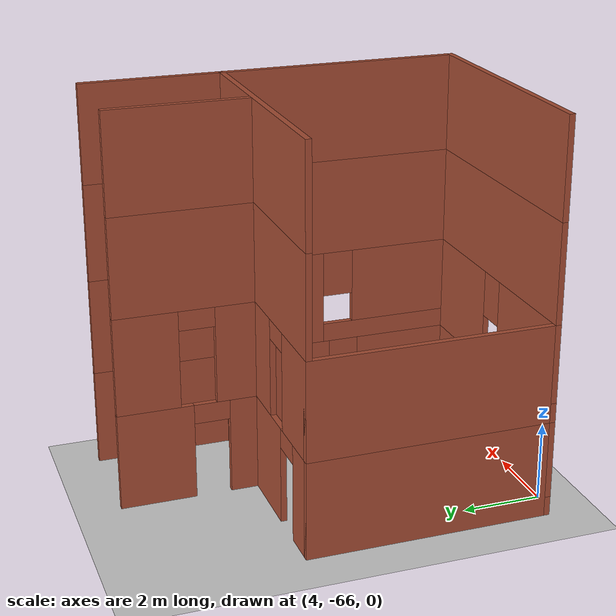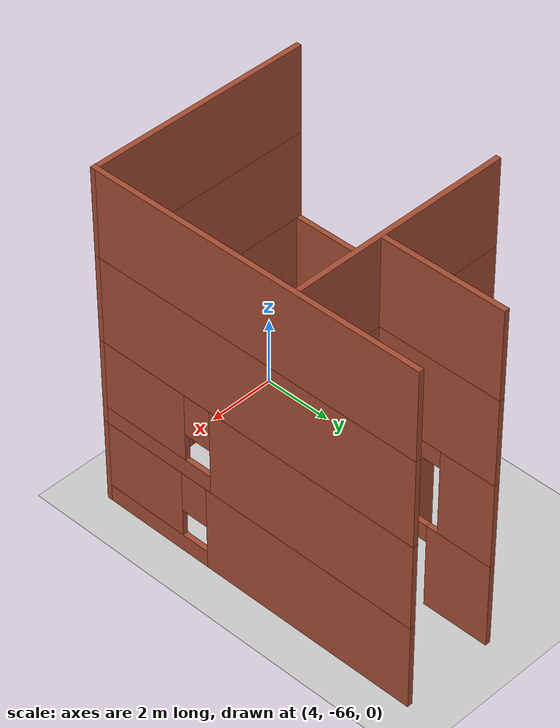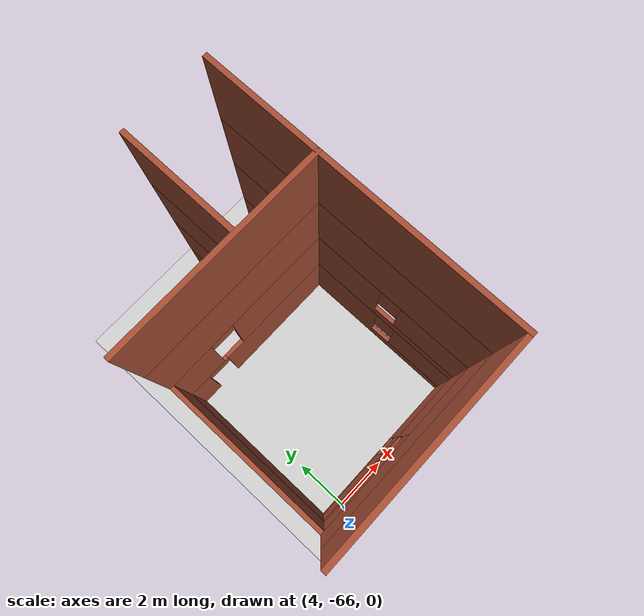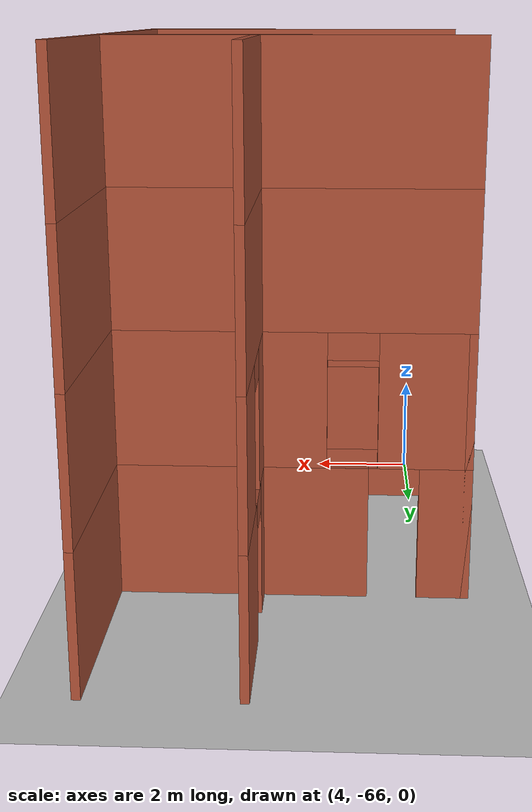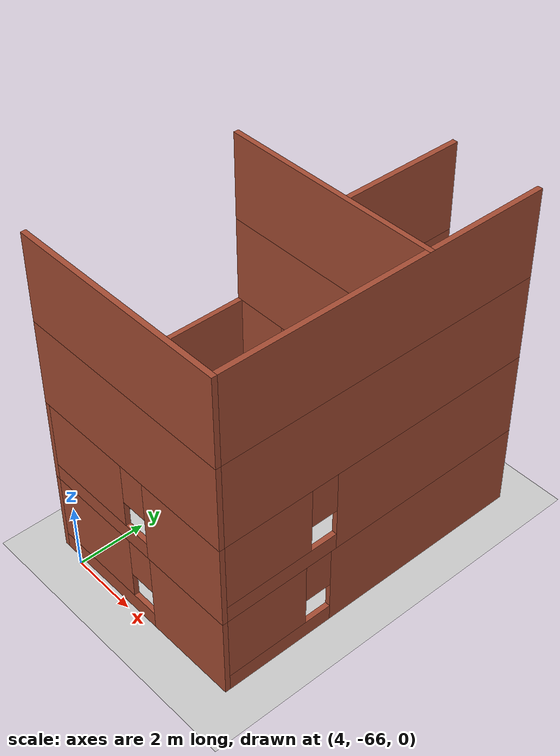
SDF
<sdf version="1.7">
 <world name="default">
  <model name="ground_plane">
   <static>1</static>
   <link name="link">
    <collision name="collision">
     <geometry><plane><normal>0 0 1</normal><size>300 300</size></plane></geometry>
     <surface>
      <contact><collide_bitmask>65535</collide_bitmask></contact>
      <friction><ode><mu>100</mu><mu2>50</mu2></ode></friction>
     </surface>
    </collision>
    <visual name="visual">
     <cast_shadows>0</cast_shadows>
     <geometry><plane><normal>0 0 1</normal><size>300 300</size></plane></geometry>
     <material>
      <script><uri>file://media/materials/scripts/gazebo.material</uri><name>Gazebo/Grey</name></script>
     </material>
    </visual>
   </link>
  </model>
  <model name="Drone_House_2">
   <pose>1.8622 -57.4379 0 0 -0 0</pose>
   <link name="Wall_101">
    <collision name="Wall_101_Collision">
     <geometry><box><size>6.5 0.15 2.5</size></box></geometry>
     <pose>0 0 1.25 0 -0 0</pose>
    </collision>
    <visual name="Wall_101_Visual">
     <pose>0 0 1.25 0 -0 0</pose>
     <geometry><box><size>6.5 0.15 2.5</size></box></geometry>
     <material>
      <script><uri>file://media/materials/scripts/gazebo.material</uri><name>Gazebo/Bricks</name></script>
      <ambient>1 1 1 1</ambient>
     </material>
     <meta><layer>2</layer></meta>
    </visual>
    <pose>4.55106 -2.25 5 0 -0 0</pose>
   </link>
   <link name="Wall_105">
    <collision name="Wall_105_Collision">
     <geometry><box><size>3.5 0.15 2.5</size></box></geometry>
     <pose>0 0 1.25 0 -0 0</pose>
    </collision>
    <visual name="Wall_105_Visual">
     <pose>0 0 1.25 0 -0 0</pose>
     <geometry><box><size>3.5 0.15 2.5</size></box></geometry>
     <material>
      <script><uri>file://media/materials/scripts/gazebo.material</uri><name>Gazebo/Bricks</name></script>
      <ambient>1 1 1 1</ambient>
     </material>
     <meta><layer>2</layer></meta>
    </visual>
    <pose>5.09404 -0.429379 5 0 -0 -1.5708</pose>
   </link>
   <link name="Wall_120">
    <collision name="Wall_120_Collision">
     <geometry><box><size>9.75 0.15 2.5</size></box></geometry>
     <pose>0 0 1.25 0 -0 0</pose>
    </collision>
    <visual name="Wall_120_Visual">
     <pose>0 0 1.25 0 -0 0</pose>
     <geometry><box><size>9.75 0.15 2.5</size></box></geometry>
     <material>
      <script><uri>file://media/materials/scripts/gazebo.material</uri><name>Gazebo/Bricks</name></script>
      <ambient>1 1 1 1</ambient>
     </material>
     <meta><layer>3</layer></meta>
    </visual>
    <pose>7.72606 -3.55 7.5 0 -0 -1.5708</pose>
   </link>
   <link name="Wall_121">
    <collision name="Wall_121_Collision">
     <geometry><box><size>6.5 0.15 2.5</size></box></geometry>
     <pose>0 0 1.25 0 -0 0</pose>
    </collision>
    <visual name="Wall_121_Visual">
     <pose>0 0 1.25 0 -0 0</pose>
     <geometry><box><size>6.5 0.15 2.5</size></box></geometry>
     <material>
      <script><uri>file://media/materials/scripts/gazebo.material</uri><name>Gazebo/Bricks</name></script>
      <ambient>1 1 1 1</ambient>
     </material>
     <meta><layer>3</layer></meta>
    </visual>
    <pose>4.55106 -8.35 7.5 0 -0 3.14159</pose>
   </link>
   <link name="Wall_123">
    <collision name="Wall_123_Collision">
     <geometry><box><size>6.5 0.15 2.5</size></box></geometry>
     <pose>0 0 1.25 0 -0 0</pose>
    </collision>
    <visual name="Wall_123_Visual">
     <pose>0 0 1.25 0 -0 0</pose>
     <geometry><box><size>6.5 0.15 2.5</size></box></geometry>
     <material>
      <script><uri>file://media/materials/scripts/gazebo.material</uri><name>Gazebo/Bricks</name></script>
      <ambient>1 1 1 1</ambient>
     </material>
     <meta><layer>3</layer></meta>
    </visual>
    <pose>4.55106 -2.25 7.5 0 -0 0</pose>
   </link>
   <link name="Wall_127">
    <collision name="Wall_127_Collision">
     <geometry><box><size>3.5 0.15 2.5</size></box></geometry>
     <pose>0 0 1.25 0 -0 0</pose>
    </collision>
    <visual name="Wall_127_Visual">
     <pose>0 0 1.25 0 -0 0</pose>
     <geometry><box><size>3.5 0.15 2.5</size></box></geometry>
     <material>
      <script><uri>file://media/materials/scripts/gazebo.material</uri><name>Gazebo/Bricks</name></script>
      <ambient>1 1 1 1</ambient>
     </material>
     <meta><layer>3</layer></meta>
    </visual>
    <pose>5.09404 -0.429379 7.5 0 -0 -1.5708</pose>
   </link>
   <link name="Wall_23">
    <pose>7.72606 -3.55 0 0 -0 -1.5708</pose>
    <visual name="Wall_23_Visual_0">
     <pose>-1.69699 0 1.25 0 -0 0</pose>
     <geometry><box><size>6.35603 0.15 2.5</size></box></geometry>
     <material>
      <script><uri>file://media/materials/scripts/gazebo.material</uri><name>Gazebo/Bricks</name></script>
      <ambient>1 1 1 1</ambient>
     </material>
     <meta><layer>0</layer></meta>
    </visual>
    <collision name="Wall_23_Collision_0">
     <geometry><box><size>6.35603 0.15 2.5</size></box></geometry>
     <pose>-1.69699 0 1.25 0 -0 0</pose>
    </collision>
    <visual name="Wall_23_Visual_1">
     <pose>3.17801 0 0.25 0 -0 0</pose>
     <geometry><box><size>3.39397 0.15 0.5</size></box></geometry>
     <material>
      <script><uri>file://media/materials/scripts/gazebo.material</uri><name>Gazebo/Bricks</name></script>
      <ambient>1 1 1 1</ambient>
     </material>
     <meta><layer>0</layer></meta>
    </visual>
    <collision name="Wall_23_Collision_1">
     <geometry><box><size>3.39397 0.15 0.5</size></box></geometry>
     <pose>3.17801 0 0.25 0 -0 0</pose>
    </collision>
    <visual name="Wall_23_Visual_2">
     <pose>3.57801 0 1.5 0 -0 0</pose>
     <geometry><box><size>2.59397 0.15 2</size></box></geometry>
     <material>
      <script><uri>file://media/materials/scripts/gazebo.material</uri><name>Gazebo/Bricks</name></script>
      <ambient>1 1 1 1</ambient>
     </material>
     <meta><layer>0</layer></meta>
    </visual>
    <collision name="Wall_23_Collision_2">
     <geometry><box><size>2.59397 0.15 2</size></box></geometry>
     <pose>3.57801 0 1.5 0 -0 0</pose>
    </collision>
    <visual name="Wall_23_Visual_3">
     <pose>1.88103 0 1.9 0 -0 0</pose>
     <geometry><box><size>0.8 0.15 1.2</size></box></geometry>
     <material>
      <script><uri>file://media/materials/scripts/gazebo.material</uri><name>Gazebo/Bricks</name></script>
      <ambient>1 1 1 1</ambient>
     </material>
     <meta><layer>0</layer></meta>
    </visual>
    <collision name="Wall_23_Collision_3">
     <geometry><box><size>0.8 0.15 1.2</size></box></geometry>
     <pose>1.88103 0 1.9 0 -0 0</pose>
    </collision>
   </link>
   <link name="Wall_24">
    <pose>4.55106 -8.35 0 0 -0 3.14159</pose>
    <visual name="Wall_24_Visual_0">
     <pose>-1.89698 0 1.25 0 -0 0</pose>
     <geometry><box><size>2.70603 0.15 2.5</size></box></geometry>
     <material>
      <script><uri>file://media/materials/scripts/gazebo.material</uri><name>Gazebo/Bricks</name></script>
      <ambient>1 1 1 1</ambient>
     </material>
     <meta><layer>0</layer></meta>
    </visual>
    <collision name="Wall_24_Collision_0">
     <geometry><box><size>2.70603 0.15 2.5</size></box></geometry>
     <pose>-1.89698 0 1.25 0 -0 0</pose>
    </collision>
    <visual name="Wall_24_Visual_1">
     <pose>1.35302 0 0.25 0 -0 0</pose>
     <geometry><box><size>3.79397 0.15 0.5</size></box></geometry>
     <material>
      <script><uri>file://media/materials/scripts/gazebo.material</uri><name>Gazebo/Bricks</name></script>
      <ambient>1 1 1 1</ambient>
     </material>
     <meta><layer>0</layer></meta>
    </visual>
    <collision name="Wall_24_Collision_1">
     <geometry><box><size>3.79397 0.15 0.5</size></box></geometry>
     <pose>1.35302 0 0.25 0 -0 0</pose>
    </collision>
    <visual name="Wall_24_Visual_2">
     <pose>1.75301 0 1.5 0 -0 0</pose>
     <geometry><box><size>2.99397 0.15 2</size></box></geometry>
     <material>
      <script><uri>file://media/materials/scripts/gazebo.material</uri><name>Gazebo/Bricks</name></script>
      <ambient>1 1 1 1</ambient>
     </material>
     <meta><layer>0</layer></meta>
    </visual>
    <collision name="Wall_24_Collision_2">
     <geometry><box><size>2.99397 0.15 2</size></box></geometry>
     <pose>1.75301 0 1.5 0 -0 0</pose>
    </collision>
    <visual name="Wall_24_Visual_3">
     <pose>-0.14397 0 1.9 0 -0 0</pose>
     <geometry><box><size>0.8 0.15 1.2</size></box></geometry>
     <material>
      <script><uri>file://media/materials/scripts/gazebo.material</uri><name>Gazebo/Bricks</name></script>
      <ambient>1 1 1 1</ambient>
     </material>
     <meta><layer>0</layer></meta>
    </visual>
    <collision name="Wall_24_Collision_3">
     <geometry><box><size>0.8 0.15 1.2</size></box></geometry>
     <pose>-0.14397 0 1.9 0 -0 0</pose>
    </collision>
   </link>
   <link name="Wall_25">
    <collision name="Wall_25_Collision">
     <geometry><box><size>6.25 0.15 2.5</size></box></geometry>
     <pose>0 0 1.25 0 -0 0</pose>
    </collision>
    <visual name="Wall_25_Visual">
     <pose>0 0 1.25 0 -0 0</pose>
     <geometry><box><size>6.25 0.15 2.5</size></box></geometry>
     <material>
      <script><uri>file://media/materials/scripts/gazebo.material</uri><name>Gazebo/Bricks</name></script>
      <ambient>1 1 1 1</ambient>
     </material>
     <meta><layer>0</layer></meta>
    </visual>
    <pose>1.37606 -5.3 0 0 -0 1.5708</pose>
   </link>
   <link name="Wall_26">
    <pose>4.55106 -2.25 0 0 -0 0</pose>
    <visual name="Wall_26_Visual_0">
     <pose>-2.77552 0 1.25 0 -0 0</pose>
     <geometry><box><size>0.948955 0.15 2.5</size></box></geometry>
     <material>
      <script><uri>file://media/materials/scripts/gazebo.material</uri><name>Gazebo/Bricks</name></script>
      <ambient>1 1 1 1</ambient>
     </material>
     <meta><layer>0</layer></meta>
    </visual>
    <collision name="Wall_26_Collision_0">
     <geometry><box><size>0.948955 0.15 2.5</size></box></geometry>
     <pose>-2.77552 0 1.25 0 -0 0</pose>
    </collision>
    <visual name="Wall_26_Visual_1">
     <pose>0.924477 0 1.25 0 -0 0</pose>
     <geometry><box><size>4.65104 0.15 2.5</size></box></geometry>
     <material>
      <script><uri>file://media/materials/scripts/gazebo.material</uri><name>Gazebo/Bricks</name></script>
      <ambient>1 1 1 1</ambient>
     </material>
     <meta><layer>0</layer></meta>
    </visual>
    <collision name="Wall_26_Collision_1">
     <geometry><box><size>4.65104 0.15 2.5</size></box></geometry>
     <pose>0.924477 0 1.25 0 -0 0</pose>
    </collision>
    <visual name="Wall_26_Visual_2">
     <pose>-1.85105 0 2.25 0 -0 0</pose>
     <geometry><box><size>0.9 0.15 0.5</size></box></geometry>
     <material>
      <script><uri>file://media/materials/scripts/gazebo.material</uri><name>Gazebo/Bricks</name></script>
      <ambient>1 1 1 1</ambient>
     </material>
     <meta><layer>0</layer></meta>
    </visual>
    <collision name="Wall_26_Collision_2">
     <geometry><box><size>0.9 0.15 0.5</size></box></geometry>
     <pose>-1.85105 0 2.25 0 -0 0</pose>
    </collision>
   </link>
   <link name="Wall_33">
    <pose>5.09404 -0.429379 0 0 -0 -1.5708</pose>
    <visual name="Wall_33_Visual_0">
     <pose>-0.793691 0 1.25 0 -0 0</pose>
     <geometry><box><size>1.91262 0.15 2.5</size></box></geometry>
     <material>
      <script><uri>file://media/materials/scripts/gazebo.material</uri><name>Gazebo/Bricks</name></script>
      <ambient>1 1 1 1</ambient>
     </material>
     <meta><layer>0</layer></meta>
    </visual>
    <collision name="Wall_33_Collision_0">
     <geometry><box><size>1.91262 0.15 2.5</size></box></geometry>
     <pose>-0.793691 0 1.25 0 -0 0</pose>
    </collision>
    <visual name="Wall_33_Visual_1">
     <pose>1.40631 0 1.25 0 -0 0</pose>
     <geometry><box><size>0.687383 0.15 2.5</size></box></geometry>
     <material>
      <script><uri>file://media/materials/scripts/gazebo.material</uri><name>Gazebo/Bricks</name></script>
      <ambient>1 1 1 1</ambient>
     </material>
     <meta><layer>0</layer></meta>
    </visual>
    <collision name="Wall_33_Collision_1">
     <geometry><box><size>0.687383 0.15 2.5</size></box></geometry>
     <pose>1.40631 0 1.25 0 -0 0</pose>
    </collision>
    <visual name="Wall_33_Visual_2">
     <pose>0.612617 0 2.25 0 -0 0</pose>
     <geometry><box><size>0.9 0.15 0.5</size></box></geometry>
     <material>
      <script><uri>file://media/materials/scripts/gazebo.material</uri><name>Gazebo/Bricks</name></script>
      <ambient>1 1 1 1</ambient>
     </material>
     <meta><layer>0</layer></meta>
    </visual>
    <collision name="Wall_33_Collision_2">
     <geometry><box><size>0.9 0.15 0.5</size></box></geometry>
     <pose>0.612617 0 2.25 0 -0 0</pose>
    </collision>
   </link>
   <link name="Wall_49">
    <pose>7.72606 -3.55 2.5 0 -0 -1.5708</pose>
    <visual name="Wall_49_Visual_0">
     <pose>-1.77679 0 1.25 0 -0 0</pose>
     <geometry><box><size>6.19643 0.15 2.5</size></box></geometry>
     <material>
      <script><uri>file://media/materials/scripts/gazebo.material</uri><name>Gazebo/Bricks</name></script>
      <ambient>1 1 1 1</ambient>
     </material>
     <meta><layer>1</layer></meta>
    </visual>
    <collision name="Wall_49_Collision_0">
     <geometry><box><size>6.19643 0.15 2.5</size></box></geometry>
     <pose>-1.77679 0 1.25 0 -0 0</pose>
    </collision>
    <visual name="Wall_49_Visual_1">
     <pose>3.09821 0 0.25 0 -0 0</pose>
     <geometry><box><size>3.55357 0.15 0.5</size></box></geometry>
     <material>
      <script><uri>file://media/materials/scripts/gazebo.material</uri><name>Gazebo/Bricks</name></script>
      <ambient>1 1 1 1</ambient>
     </material>
     <meta><layer>1</layer></meta>
    </visual>
    <collision name="Wall_49_Collision_1">
     <geometry><box><size>3.55357 0.15 0.5</size></box></geometry>
     <pose>3.09821 0 0.25 0 -0 0</pose>
    </collision>
    <visual name="Wall_49_Visual_2">
     <pose>3.49821 0 1.5 0 -0 0</pose>
     <geometry><box><size>2.75357 0.15 2</size></box></geometry>
     <material>
      <script><uri>file://media/materials/scripts/gazebo.material</uri><name>Gazebo/Bricks</name></script>
      <ambient>1 1 1 1</ambient>
     </material>
     <meta><layer>1</layer></meta>
    </visual>
    <collision name="Wall_49_Collision_2">
     <geometry><box><size>2.75357 0.15 2</size></box></geometry>
     <pose>3.49821 0 1.5 0 -0 0</pose>
    </collision>
    <visual name="Wall_49_Visual_3">
     <pose>1.72143 0 1.9 0 -0 0</pose>
     <geometry><box><size>0.8 0.15 1.2</size></box></geometry>
     <material>
      <script><uri>file://media/materials/scripts/gazebo.material</uri><name>Gazebo/Bricks</name></script>
      <ambient>1 1 1 1</ambient>
     </material>
     <meta><layer>1</layer></meta>
    </visual>
    <collision name="Wall_49_Collision_3">
     <geometry><box><size>0.8 0.15 1.2</size></box></geometry>
     <pose>1.72143 0 1.9 0 -0 0</pose>
    </collision>
   </link>
   <link name="Wall_50">
    <pose>4.55106 -8.35 2.5 0 -0 3.14159</pose>
    <visual name="Wall_50_Visual_0">
     <pose>-1.87038 0 1.25 0 -0 0</pose>
     <geometry><box><size>2.75923 0.15 2.5</size></box></geometry>
     <material>
      <script><uri>file://media/materials/scripts/gazebo.material</uri><name>Gazebo/Bricks</name></script>
      <ambient>1 1 1 1</ambient>
     </material>
     <meta><layer>1</layer></meta>
    </visual>
    <collision name="Wall_50_Collision_0">
     <geometry><box><size>2.75923 0.15 2.5</size></box></geometry>
     <pose>-1.87038 0 1.25 0 -0 0</pose>
    </collision>
    <visual name="Wall_50_Visual_1">
     <pose>1.37962 0 0.25 0 -0 0</pose>
     <geometry><box><size>3.74077 0.15 0.5</size></box></geometry>
     <material>
      <script><uri>file://media/materials/scripts/gazebo.material</uri><name>Gazebo/Bricks</name></script>
      <ambient>1 1 1 1</ambient>
     </material>
     <meta><layer>1</layer></meta>
    </visual>
    <collision name="Wall_50_Collision_1">
     <geometry><box><size>3.74077 0.15 0.5</size></box></geometry>
     <pose>1.37962 0 0.25 0 -0 0</pose>
    </collision>
    <visual name="Wall_50_Visual_2">
     <pose>1.77961 0 1.5 0 -0 0</pose>
     <geometry><box><size>2.94077 0.15 2</size></box></geometry>
     <material>
      <script><uri>file://media/materials/scripts/gazebo.material</uri><name>Gazebo/Bricks</name></script>
      <ambient>1 1 1 1</ambient>
     </material>
     <meta><layer>1</layer></meta>
    </visual>
    <collision name="Wall_50_Collision_2">
     <geometry><box><size>2.94077 0.15 2</size></box></geometry>
     <pose>1.77961 0 1.5 0 -0 0</pose>
    </collision>
    <visual name="Wall_50_Visual_3">
     <pose>-0.090769 0 1.9 0 -0 0</pose>
     <geometry><box><size>0.8 0.15 1.2</size></box></geometry>
     <material>
      <script><uri>file://media/materials/scripts/gazebo.material</uri><name>Gazebo/Bricks</name></script>
      <ambient>1 1 1 1</ambient>
     </material>
     <meta><layer>1</layer></meta>
    </visual>
    <collision name="Wall_50_Collision_3">
     <geometry><box><size>0.8 0.15 1.2</size></box></geometry>
     <pose>-0.090769 0 1.9 0 -0 0</pose>
    </collision>
   </link>
   <link name="Wall_51">
    <collision name="Wall_51_Collision">
     <geometry><box><size>6.25 0.15 2.5</size></box></geometry>
     <pose>0 0 1.25 0 -0 0</pose>
    </collision>
    <visual name="Wall_51_Visual">
     <pose>0 0 1.25 0 -0 0</pose>
     <geometry><box><size>6.25 0.15 2.5</size></box></geometry>
     <material>
      <script><uri>file://media/materials/scripts/gazebo.material</uri><name>Gazebo/Bricks</name></script>
      <ambient>1 1 1 1</ambient>
     </material>
     <meta><layer>1</layer></meta>
    </visual>
    <pose>1.37606 -5.3 2.5 0 -0 1.5708</pose>
   </link>
   <link name="Wall_52">
    <pose>4.55106 -2.25 2.5 0 -0 0</pose>
    <visual name="Wall_52_Visual_0">
     <pose>-2.40312 0 1.25 0 -0 0</pose>
     <geometry><box><size>1.69376 0.15 2.5</size></box></geometry>
     <material>
      <script><uri>file://media/materials/scripts/gazebo.material</uri><name>Gazebo/Bricks</name></script>
      <ambient>1 1 1 1</ambient>
     </material>
     <meta><layer>1</layer></meta>
    </visual>
    <collision name="Wall_52_Collision_0">
     <geometry><box><size>1.69376 0.15 2.5</size></box></geometry>
     <pose>-2.40312 0 1.25 0 -0 0</pose>
    </collision>
    <visual name="Wall_52_Visual_1">
     <pose>1.29688 0 1.25 0 -0 0</pose>
     <geometry><box><size>3.90624 0.15 2.5</size></box></geometry>
     <material>
      <script><uri>file://media/materials/scripts/gazebo.material</uri><name>Gazebo/Bricks</name></script>
      <ambient>1 1 1 1</ambient>
     </material>
     <meta><layer>1</layer></meta>
    </visual>
    <collision name="Wall_52_Collision_1">
     <geometry><box><size>3.90624 0.15 2.5</size></box></geometry>
     <pose>1.29688 0 1.25 0 -0 0</pose>
    </collision>
    <visual name="Wall_52_Visual_2">
     <pose>-1.10624 0 2.25 0 -0 0</pose>
     <geometry><box><size>0.9 0.15 0.5</size></box></geometry>
     <material>
      <script><uri>file://media/materials/scripts/gazebo.material</uri><name>Gazebo/Bricks</name></script>
      <ambient>1 1 1 1</ambient>
     </material>
     <meta><layer>1</layer></meta>
    </visual>
    <collision name="Wall_52_Collision_2">
     <geometry><box><size>0.9 0.15 0.5</size></box></geometry>
     <pose>-1.10624 0 2.25 0 -0 0</pose>
    </collision>
   </link>
   <link name="Wall_56">
    <pose>5.09404 -0.429379 2.5 0 -0 -1.5708</pose>
    <visual name="Wall_56_Visual_0">
     <pose>-0.953293 0 1.25 0 -0 0</pose>
     <geometry><box><size>1.59342 0.15 2.5</size></box></geometry>
     <material>
      <script><uri>file://media/materials/scripts/gazebo.material</uri><name>Gazebo/Bricks</name></script>
      <ambient>1 1 1 1</ambient>
     </material>
     <meta><layer>1</layer></meta>
    </visual>
    <collision name="Wall_56_Collision_0">
     <geometry><box><size>1.59342 0.15 2.5</size></box></geometry>
     <pose>-0.953293 0 1.25 0 -0 0</pose>
    </collision>
    <visual name="Wall_56_Visual_1">
     <pose>1.24671 0 1.25 0 -0 0</pose>
     <geometry><box><size>1.00659 0.15 2.5</size></box></geometry>
     <material>
      <script><uri>file://media/materials/scripts/gazebo.material</uri><name>Gazebo/Bricks</name></script>
      <ambient>1 1 1 1</ambient>
     </material>
     <meta><layer>1</layer></meta>
    </visual>
    <collision name="Wall_56_Collision_1">
     <geometry><box><size>1.00659 0.15 2.5</size></box></geometry>
     <pose>1.24671 0 1.25 0 -0 0</pose>
    </collision>
    <visual name="Wall_56_Visual_2">
     <pose>0.293415 0 2.25 0 -0 0</pose>
     <geometry><box><size>0.9 0.15 0.5</size></box></geometry>
     <material>
      <script><uri>file://media/materials/scripts/gazebo.material</uri><name>Gazebo/Bricks</name></script>
      <ambient>1 1 1 1</ambient>
     </material>
     <meta><layer>1</layer></meta>
    </visual>
    <collision name="Wall_56_Collision_2">
     <geometry><box><size>0.9 0.15 0.5</size></box></geometry>
     <pose>0.293415 0 2.25 0 -0 0</pose>
    </collision>
   </link>
   <link name="Wall_98">
    <collision name="Wall_98_Collision">
     <geometry><box><size>9.75 0.15 2.5</size></box></geometry>
     <pose>0 0 1.25 0 -0 0</pose>
    </collision>
    <visual name="Wall_98_Visual">
     <pose>0 0 1.25 0 -0 0</pose>
     <geometry><box><size>9.75 0.15 2.5</size></box></geometry>
     <material>
      <script><uri>file://media/materials/scripts/gazebo.material</uri><name>Gazebo/Bricks</name></script>
      <ambient>1 1 1 1</ambient>
     </material>
     <meta><layer>2</layer></meta>
    </visual>
    <pose>7.72606 -3.55 5 0 -0 -1.5708</pose>
   </link>
   <link name="Wall_99">
    <collision name="Wall_99_Collision">
     <geometry><box><size>6.5 0.15 2.5</size></box></geometry>
     <pose>0 0 1.25 0 -0 0</pose>
    </collision>
    <visual name="Wall_99_Visual">
     <pose>0 0 1.25 0 -0 0</pose>
     <geometry><box><size>6.5 0.15 2.5</size></box></geometry>
     <material>
      <script><uri>file://media/materials/scripts/gazebo.material</uri><name>Gazebo/Bricks</name></script>
      <ambient>1 1 1 1</ambient>
     </material>
     <meta><layer>2</layer></meta>
    </visual>
    <pose>4.55106 -8.35 5 0 -0 3.14159</pose>
   </link>
   <static>1</static>
  </model>
 </world>
</sdf>
